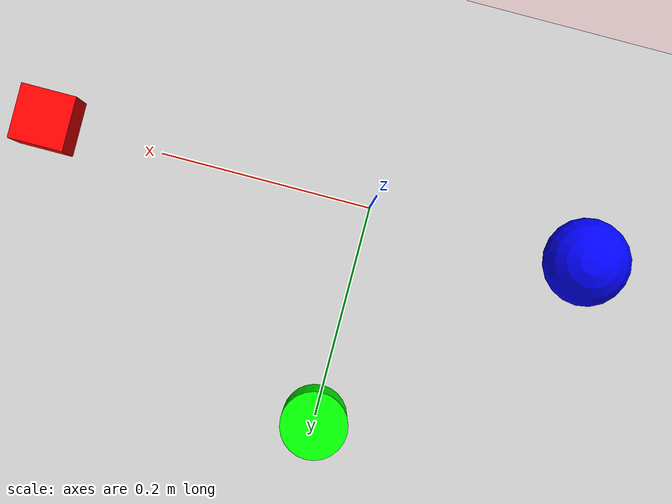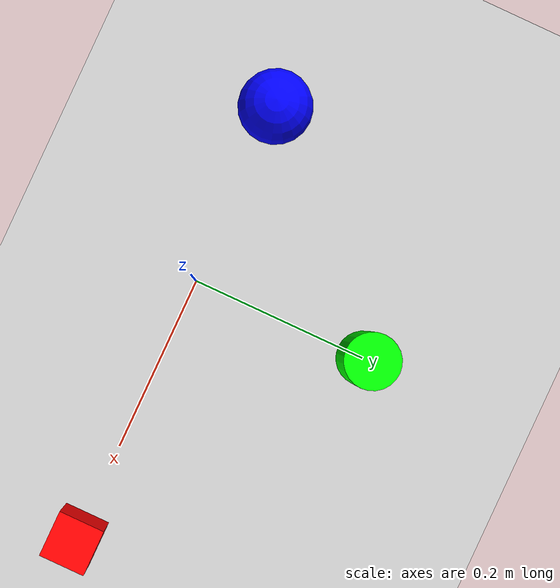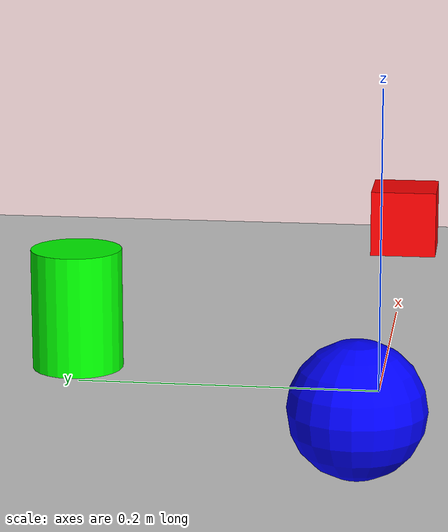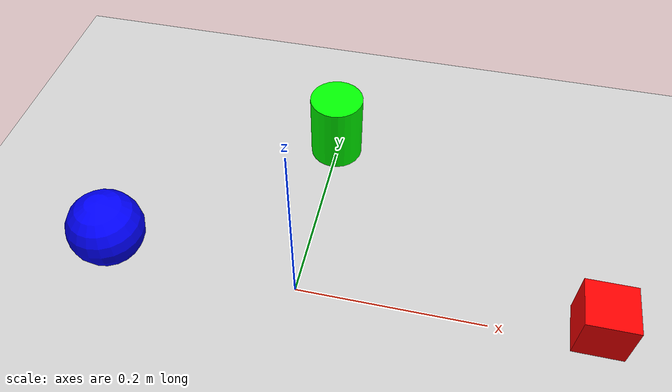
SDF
<?xml version="1.0" ?>
<sdf version="1.4">

  <world name="ggcnn_grasping">
    <!-- 地面 -->
    <include>
      <uri>model://ground_plane</uri>
    </include>

    <!-- 光源 -->
    <include>
      <uri>model://sun</uri>
    </include>

    <!-- 相机视角 -->
    <gui fullscreen='0'>
      <camera name='user_camera'>
        <pose>1.5 -1.5 1.0 0.0 0.5 2.356</pose>
        <view_controller>orbit</view_controller>
      </camera>
    </gui>

    <!-- 抓取物品 - 方块 -->
    <model name="grasp_cube">
      <pose>0.3 0.0 0.05 0 0 0</pose>
      <link name="link">
        <collision name="collision">
          <geometry>
            <box>
              <size>0.05 0.05 0.05</size>
            </box>
          </geometry>
        </collision>
        <visual name="visual">
          <geometry>
            <box>
              <size>0.05 0.05 0.05</size>
            </box>
          </geometry>
          <material>
            <ambient>1.0 0.0 0.0 1.0</ambient>
            <diffuse>1.0 0.0 0.0 1.0</diffuse>
          </material>
        </visual>
        <inertial>
          <mass>0.1</mass>
          <inertia>
            <ixx>0.0001</ixx>
            <ixy>0</ixy>
            <ixz>0</ixz>
            <iyy>0.0001</iyy>
            <iyz>0</iyz>
            <izz>0.0001</izz>
          </inertia>
        </inertial>
      </link>
    </model>

    <!-- 抓取物品 - 圆柱体 -->
    <model name="grasp_cylinder">
      <pose>0.0 0.2 0.05 0 0 0</pose>
      <link name="link">
        <collision name="collision">
          <geometry>
            <cylinder>
              <radius>0.03</radius>
              <length>0.08</length>
            </cylinder>
          </geometry>
        </collision>
        <visual name="visual">
          <geometry>
            <cylinder>
              <radius>0.03</radius>
              <length>0.08</length>
            </cylinder>
          </geometry>
          <material>
            <ambient>0.0 1.0 0.0 1.0</ambient>
            <diffuse>0.0 1.0 0.0 1.0</diffuse>
          </material>
        </visual>
        <inertial>
          <mass>0.1</mass>
          <inertia>
            <ixx>0.0001</ixx>
            <ixy>0</ixy>
            <ixz>0</ixz>
            <iyy>0.0001</iyy>
            <iyz>0</iyz>
            <izz>0.0001</izz>
          </inertia>
        </inertial>
      </link>
    </model>

    <!-- 抓取物品 - 球体 -->
    <model name="grasp_sphere">
      <pose>-0.2 0.0 0.05 0 0 0</pose>
      <link name="link">
        <collision name="collision">
          <geometry>
            <sphere>
              <radius>0.04</radius>
            </sphere>
          </geometry>
        </collision>
        <visual name="visual">
          <geometry>
            <sphere>
              <radius>0.04</radius>
            </sphere>
          </geometry>
          <material>
            <ambient>0.0 0.0 1.0 1.0</ambient>
            <diffuse>0.0 0.0 1.0 1.0</diffuse>
          </material>
        </visual>
        <inertial>
          <mass>0.1</mass>
          <inertia>
            <ixx>0.0001</ixx>
            <ixy>0</ixy>
            <ixz>0</ixz>
            <iyy>0.0001</iyy>
            <iyz>0</iyz>
            <izz>0.0001</izz>
          </inertia>
        </inertial>
      </link>
    </model>

  </world>
</sdf>
